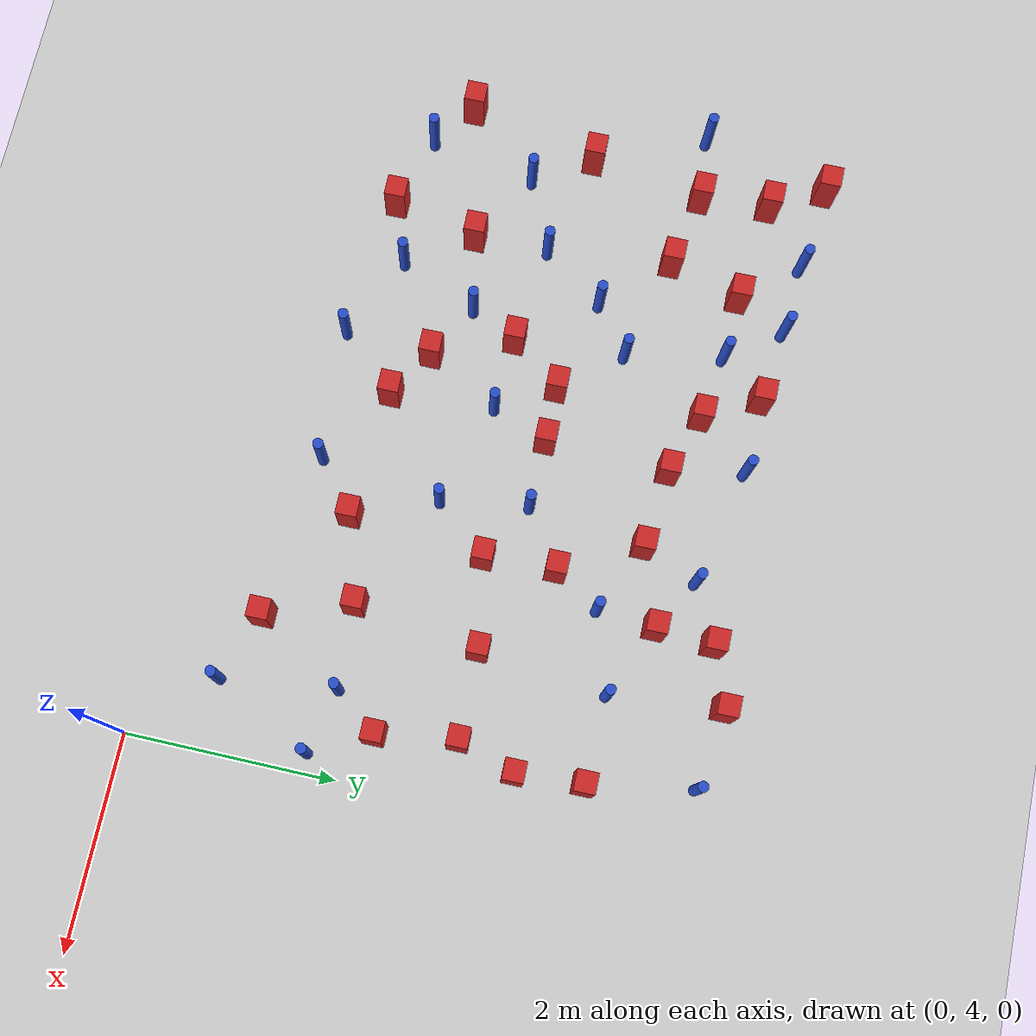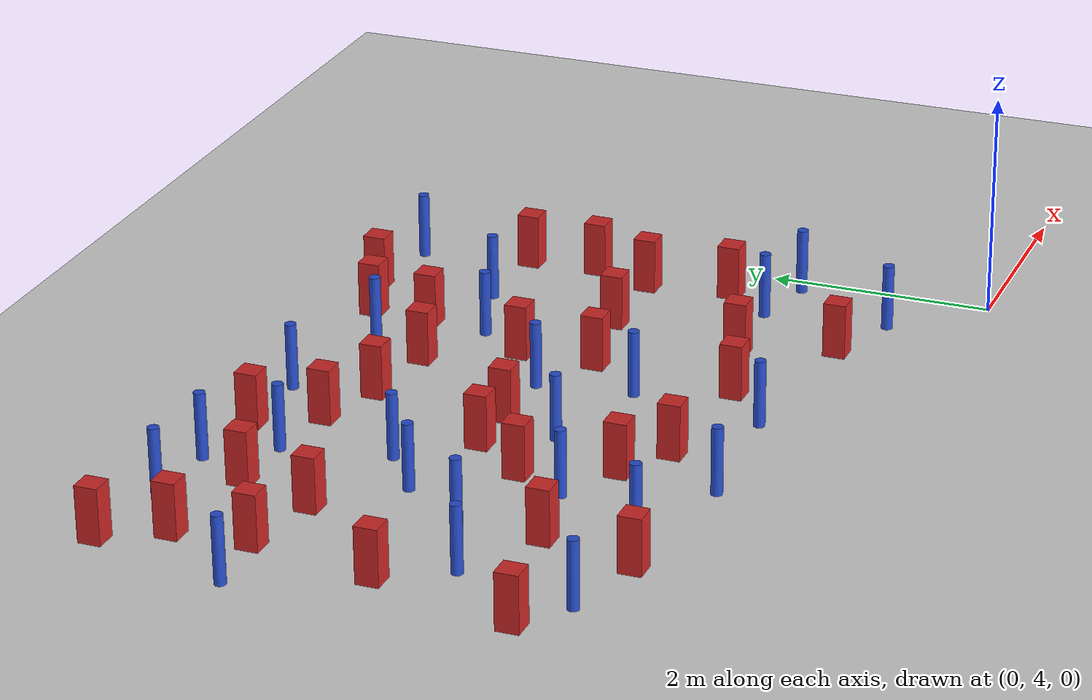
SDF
<sdf version="1.6">
 <world name="default">
  <model name="ground_plane">
   <static>1</static>
   <link name="link">
    <collision name="collision">
     <geometry><plane><normal>0 0 1</normal><size>100 100</size></plane></geometry>
     <surface><friction><ode><mu>100</mu><mu2>50</mu2></ode></friction></surface>
    </collision>
    <visual name="visual">
     <cast_shadows>0</cast_shadows>
     <geometry><plane><normal>0 0 1</normal><size>100 100</size></plane></geometry>
     <material>
      <ambient>1.0 1.0 1.0 1.0</ambient>
      <diffuse>0.8 0.8 0.8 1.0</diffuse>
      <specular>0.01 0.01 0.01 1.000000</specular>
     </material>
    </visual>
   </link>
  </model>
  <model name="square_post_obstacle5">
   <static>true</static>
   <pose>-3.48958603233 8.40357161322 8.22691968438e-08 7.22125133819e-06 -7.54495500217e-07 2.29674213826e-05</pose>
   <link name="link">
    <pose>0 0 0.25 0 -0 0</pose>
    <inertial>
     <mass>100</mass>
     <inertia>
      <ixx>0.166667</ixx>
      <ixy>0</ixy>
      <ixz>0</ixz>
      <iyy>0.166667</iyy>
      <iyz>0</iyz>
      <izz>0.166667</izz>
     </inertia>
    </inertial>
    <collision name="collision"><geometry><box><size>.2 .2 .5</size></box></geometry></collision>
    <visual name="visual">
     <geometry><box><size>.2 .2 .5</size></box></geometry>
     <material>
      <script><name>Gazebo/Red</name><uri>file://media/materials/scripts/gazebo.material</uri></script>
     </material>
    </visual>
   </link>
  </model>
  <model name="square_post_obstacle6">
   <static>true</static>
   <pose>-4.08551732455 8.60938443152 8.22691968438e-08 7.22125133819e-06 -7.54495500217e-07 2.29674213826e-05</pose>
   <link name="link">
    <pose>0 0 0.25 0 -0 0</pose>
    <inertial>
     <mass>100</mass>
     <inertia>
      <ixx>0.166667</ixx>
      <ixy>0</ixy>
      <ixz>0</ixz>
      <iyy>0.166667</iyy>
      <iyz>0</iyz>
      <izz>0.166667</izz>
     </inertia>
    </inertial>
    <collision name="collision"><geometry><box><size>.2 .2 .5</size></box></geometry></collision>
    <visual name="visual">
     <geometry><box><size>.2 .2 .5</size></box></geometry>
     <material>
      <script><name>Gazebo/Red</name><uri>file://media/materials/scripts/gazebo.material</uri></script>
     </material>
    </visual>
   </link>
  </model>
  <model name="pole_obstacle11">
   <static>true</static>
   <pose>-5.09082674828 9.23493699206 2.88873142074e-08 -9.9053668967e-09 4.60219948993e-07 -1.20965994957e-07</pose>
   <link name="link">
    <pose>0 0 0.3 0 -0 0</pose>
    <inertial>
     <mass>1</mass>
     <inertia><ixx>0.145833</ixx><ixy>0</ixy><ixz>0</ixz><iyy>0.145833</iyy><iyz>0</iyz><izz>0.125</izz></inertia>
    </inertial>
    <collision name="collision">
     <geometry><cylinder><radius>0.05</radius><length>.6</length></cylinder></geometry>
    </collision>
    <visual name="visual">
     <geometry><cylinder><radius>0.05</radius><length>.6</length></cylinder></geometry>
     <material>
      <script><name>Gazebo/Blue</name><uri>file://media/materials/scripts/gazebo.material</uri></script>
     </material>
    </visual>
   </link>
  </model>
  <model name="pole_obstacle13">
   <static>true</static>
   <pose>-4.68693473672 6.25540807904 2.88873142074e-08 -9.90536690842e-09 4.60219948965e-07 -1.20965994976e-07</pose>
   <link name="link">
    <pose>0 0 0.3 0 -0 0</pose>
    <inertial>
     <mass>1</mass>
     <inertia><ixx>0.145833</ixx><ixy>0</ixy><ixz>0</ixz><iyy>0.145833</iyy><iyz>0</iyz><izz>0.125</izz></inertia>
    </inertial>
    <collision name="collision">
     <geometry><cylinder><radius>0.05</radius><length>.6</length></cylinder></geometry>
    </collision>
    <visual name="visual">
     <geometry><cylinder><radius>0.05</radius><length>.6</length></cylinder></geometry>
     <material>
      <script><name>Gazebo/Blue</name><uri>file://media/materials/scripts/gazebo.material</uri></script>
     </material>
    </visual>
   </link>
  </model>
  <model name="square_post_obstacle14">
   <static>true</static>
   <pose>-4.07092338332 7.20835564433 8.22691968438e-08 7.2212513382e-06 -7.54495500217e-07 2.29674213826e-05</pose>
   <link name="link">
    <pose>0 0 0.25 0 -0 0</pose>
    <inertial>
     <mass>100</mass>
     <inertia>
      <ixx>0.166667</ixx>
      <ixy>0</ixy>
      <ixz>0</ixz>
      <iyy>0.166667</iyy>
      <iyz>0</iyz>
      <izz>0.166667</izz>
     </inertia>
    </inertial>
    <collision name="collision"><geometry><box><size>.2 .2 .5</size></box></geometry></collision>
    <visual name="visual">
     <geometry><box><size>.2 .2 .5</size></box></geometry>
     <material>
      <script><name>Gazebo/Red</name><uri>file://media/materials/scripts/gazebo.material</uri></script>
     </material>
    </visual>
   </link>
  </model>
  <model name="pole_obstacle28">
   <static>true</static>
   <pose>-0.670658839487 4.74331735556 2.88873142074e-08 -9.90536689661e-09 4.60219948993e-07 -1.20965994957e-07</pose>
   <link name="link">
    <pose>0 0 0.3 0 -0 0</pose>
    <inertial>
     <mass>1</mass>
     <inertia><ixx>0.145833</ixx><ixy>0</ixy><ixz>0</ixz><iyy>0.145833</iyy><iyz>0</iyz><izz>0.125</izz></inertia>
    </inertial>
    <collision name="collision">
     <geometry><cylinder><radius>0.05</radius><length>.6</length></cylinder></geometry>
    </collision>
    <visual name="visual">
     <geometry><cylinder><radius>0.05</radius><length>.6</length></cylinder></geometry>
     <material>
      <script><name>Gazebo/Blue</name><uri>file://media/materials/scripts/gazebo.material</uri></script>
     </material>
    </visual>
   </link>
  </model>
  <model name="square_post_obstacle24">
   <static>true</static>
   <pose>-6.77901674657 5.8233734673 8.22691968438e-08 7.2212513382e-06 -7.54495500217e-07 2.29674213826e-05</pose>
   <link name="link">
    <pose>0 0 0.25 0 -0 0</pose>
    <inertial>
     <mass>100</mass>
     <inertia>
      <ixx>0.166667</ixx>
      <ixy>0</ixy>
      <ixz>0</ixz>
      <iyy>0.166667</iyy>
      <iyz>0</iyz>
      <izz>0.166667</izz>
     </inertia>
    </inertial>
    <collision name="collision"><geometry><box><size>.2 .2 .5</size></box></geometry></collision>
    <visual name="visual">
     <geometry><box><size>.2 .2 .5</size></box></geometry>
     <material>
      <script><name>Gazebo/Red</name><uri>file://media/materials/scripts/gazebo.material</uri></script>
     </material>
    </visual>
   </link>
  </model>
  <model name="square_post_obstacle27">
   <static>true</static>
   <pose>-5.62643061316 5.28432594228 8.22691968438e-08 7.2212513382e-06 -7.54495500217e-07 2.29674213826e-05</pose>
   <link name="link">
    <pose>0 0 0.25 0 -0 0</pose>
    <inertial>
     <mass>100</mass>
     <inertia>
      <ixx>0.166667</ixx>
      <ixy>0</ixy>
      <ixz>0</ixz>
      <iyy>0.166667</iyy>
      <iyz>0</iyz>
      <izz>0.166667</izz>
     </inertia>
    </inertial>
    <collision name="collision"><geometry><box><size>.2 .2 .5</size></box></geometry></collision>
    <visual name="visual">
     <geometry><box><size>.2 .2 .5</size></box></geometry>
     <material>
      <script><name>Gazebo/Red</name><uri>file://media/materials/scripts/gazebo.material</uri></script>
     </material>
    </visual>
   </link>
  </model>
  <model name="square_post_obstacle30">
   <static>true</static>
   <pose>-1.44345480913 7.01463682363 8.22691968438e-08 7.2212513382e-06 -7.54495500217e-07 2.29674213826e-05</pose>
   <link name="link">
    <pose>0 0 0.25 0 -0 0</pose>
    <inertial>
     <mass>100</mass>
     <inertia>
      <ixx>0.166667</ixx>
      <ixy>0</ixy>
      <ixz>0</ixz>
      <iyy>0.166667</iyy>
      <iyz>0</iyz>
      <izz>0.166667</izz>
     </inertia>
    </inertial>
    <collision name="collision"><geometry><box><size>.2 .2 .5</size></box></geometry></collision>
    <visual name="visual">
     <geometry><box><size>.2 .2 .5</size></box></geometry>
     <material>
      <script><name>Gazebo/Red</name><uri>file://media/materials/scripts/gazebo.material</uri></script>
     </material>
    </visual>
   </link>
  </model>
  <model name="pole_obstacle39">
   <static>true</static>
   <pose>-2.8675026571 7.19557147953 2.88873142074e-08 -9.90536689859e-09 4.60219948989e-07 -1.20965994961e-07</pose>
   <link name="link">
    <pose>0 0 0.3 0 -0 0</pose>
    <inertial>
     <mass>1</mass>
     <inertia><ixx>0.145833</ixx><ixy>0</ixy><ixz>0</ixz><iyy>0.145833</iyy><iyz>0</iyz><izz>0.125</izz></inertia>
    </inertial>
    <collision name="collision">
     <geometry><cylinder><radius>0.05</radius><length>.6</length></cylinder></geometry>
    </collision>
    <visual name="visual">
     <geometry><cylinder><radius>0.05</radius><length>.6</length></cylinder></geometry>
     <material>
      <script><name>Gazebo/Blue</name><uri>file://media/materials/scripts/gazebo.material</uri></script>
     </material>
    </visual>
   </link>
  </model>
  <model name="square_post_obstacle37">
   <static>true</static>
   <pose>-1.94773936929 9.11768140269 8.22691968438e-08 7.22125133819e-06 -7.54495500217e-07 2.29674213826e-05</pose>
   <link name="link">
    <pose>0 0 0.25 0 -0 0</pose>
    <inertial>
     <mass>100</mass>
     <inertia>
      <ixx>0.166667</ixx>
      <ixy>0</ixy>
      <ixz>0</ixz>
      <iyy>0.166667</iyy>
      <iyz>0</iyz>
      <izz>0.166667</izz>
     </inertia>
    </inertial>
    <collision name="collision"><geometry><box><size>.2 .2 .5</size></box></geometry></collision>
    <visual name="visual">
     <geometry><box><size>.2 .2 .5</size></box></geometry>
     <material>
      <script><name>Gazebo/Red</name><uri>file://media/materials/scripts/gazebo.material</uri></script>
     </material>
    </visual>
   </link>
  </model>
  <model name="square_post_obstacle41">
   <static>true</static>
   <pose>-4.15422995047 5.9598400429 8.22691968438e-08 7.22125133819e-06 -7.54495500217e-07 2.29674213826e-05</pose>
   <link name="link">
    <pose>0 0 0.25 0 -0 0</pose>
    <inertial>
     <mass>100</mass>
     <inertia>
      <ixx>0.166667</ixx>
      <ixy>0</ixy>
      <ixz>0</ixz>
      <iyy>0.166667</iyy>
      <iyz>0</iyz>
      <izz>0.166667</izz>
     </inertia>
    </inertial>
    <collision name="collision"><geometry><box><size>.2 .2 .5</size></box></geometry></collision>
    <visual name="visual">
     <geometry><box><size>.2 .2 .5</size></box></geometry>
     <material>
      <script><name>Gazebo/Red</name><uri>file://media/materials/scripts/gazebo.material</uri></script>
     </material>
    </visual>
   </link>
  </model>
  <model name="pole_obstacle62">
   <static>true</static>
   <pose>-2.91675326387 5.17751795956 2.88873142074e-08 -9.90536689859e-09 4.60219948989e-07 -1.20965994961e-07</pose>
   <link name="link">
    <pose>0 0 0.3 0 -0 0</pose>
    <inertial>
     <mass>1</mass>
     <inertia><ixx>0.145833</ixx><ixy>0</ixy><ixz>0</ixz><iyy>0.145833</iyy><iyz>0</iyz><izz>0.125</izz></inertia>
    </inertial>
    <collision name="collision">
     <geometry><cylinder><radius>0.05</radius><length>.6</length></cylinder></geometry>
    </collision>
    <visual name="visual">
     <geometry><cylinder><radius>0.05</radius><length>.6</length></cylinder></geometry>
     <material>
      <script><name>Gazebo/Blue</name><uri>file://media/materials/scripts/gazebo.material</uri></script>
     </material>
    </visual>
   </link>
  </model>
  <model name="square_post_obstacle51">
   <static>true</static>
   <pose>-6.35994311782 8.86889216328 8.22691968438e-08 7.22125133819e-06 -7.54495500217e-07 2.29674213826e-05</pose>
   <link name="link">
    <pose>0 0 0.25 0 -0 0</pose>
    <inertial>
     <mass>100</mass>
     <inertia>
      <ixx>0.166667</ixx>
      <ixy>0</ixy>
      <ixz>0</ixz>
      <iyy>0.166667</iyy>
      <iyz>0</iyz>
      <izz>0.166667</izz>
     </inertia>
    </inertial>
    <collision name="collision"><geometry><box><size>.2 .2 .5</size></box></geometry></collision>
    <visual name="visual">
     <geometry><box><size>.2 .2 .5</size></box></geometry>
     <material>
      <script><name>Gazebo/Red</name><uri>file://media/materials/scripts/gazebo.material</uri></script>
     </material>
    </visual>
   </link>
  </model>
  <model name="square_post_obstacle52">
   <static>true</static>
   <pose>-1.98690926055 8.56141048474 8.22691968438e-08 7.22125133819e-06 -7.54495500217e-07 2.29674213826e-05</pose>
   <link name="link">
    <pose>0 0 0.25 0 -0 0</pose>
    <inertial>
     <mass>100</mass>
     <inertia>
      <ixx>0.166667</ixx>
      <ixy>0</ixy>
      <ixz>0</ixz>
      <iyy>0.166667</iyy>
      <iyz>0</iyz>
      <izz>0.166667</izz>
     </inertia>
    </inertial>
    <collision name="collision"><geometry><box><size>.2 .2 .5</size></box></geometry></collision>
    <visual name="visual">
     <geometry><box><size>.2 .2 .5</size></box></geometry>
     <material>
      <script><name>Gazebo/Red</name><uri>file://media/materials/scripts/gazebo.material</uri></script>
     </material>
    </visual>
   </link>
  </model>
  <model name="square_post_obstacle59">
   <static>true</static>
   <pose>-0.594910067035 7.01780344619 8.22691968438e-08 7.2212513382e-06 -7.54495500217e-07 2.29674213826e-05</pose>
   <link name="link">
    <pose>0 0 0.25 0 -0 0</pose>
    <inertial>
     <mass>100</mass>
     <inertia>
      <ixx>0.166667</ixx>
      <ixy>0</ixy>
      <ixz>0</ixz>
      <iyy>0.166667</iyy>
      <iyz>0</iyz>
      <izz>0.166667</izz>
     </inertia>
    </inertial>
    <collision name="collision"><geometry><box><size>.2 .2 .5</size></box></geometry></collision>
    <visual name="visual">
     <geometry><box><size>.2 .2 .5</size></box></geometry>
     <material>
      <script><name>Gazebo/Red</name><uri>file://media/materials/scripts/gazebo.material</uri></script>
     </material>
    </visual>
   </link>
  </model>
  <model name="square_post_obstacle62">
   <static>true</static>
   <pose>-0.480976053581 6.25958434463 8.22691968438e-08 7.22125133819e-06 -7.54495500217e-07 2.29674213826e-05</pose>
   <link name="link">
    <pose>0 0 0.25 0 -0 0</pose>
    <inertial>
     <mass>100</mass>
     <inertia>
      <ixx>0.166667</ixx>
      <ixy>0</ixy>
      <ixz>0</ixz>
      <iyy>0.166667</iyy>
      <iyz>0</iyz>
      <izz>0.166667</izz>
     </inertia>
    </inertial>
    <collision name="collision"><geometry><box><size>.2 .2 .5</size></box></geometry></collision>
    <visual name="visual">
     <geometry><box><size>.2 .2 .5</size></box></geometry>
     <material>
      <script><name>Gazebo/Red</name><uri>file://media/materials/scripts/gazebo.material</uri></script>
     </material>
    </visual>
   </link>
  </model>
  <model name="square_post_obstacle64">
   <static>true</static>
   <pose>-5.57543614679 8.04385644985 8.22691968438e-08 7.22125133819e-06 -7.54495500217e-07 2.29674213826e-05</pose>
   <link name="link">
    <pose>0 0 0.25 0 -0 0</pose>
    <inertial>
     <mass>100</mass>
     <inertia>
      <ixx>0.166667</ixx>
      <ixy>0</ixy>
      <ixz>0</ixz>
      <iyy>0.166667</iyy>
      <iyz>0</iyz>
      <izz>0.166667</izz>
     </inertia>
    </inertial>
    <collision name="collision"><geometry><box><size>.2 .2 .5</size></box></geometry></collision>
    <visual name="visual">
     <geometry><box><size>.2 .2 .5</size></box></geometry>
     <material>
      <script><name>Gazebo/Red</name><uri>file://media/materials/scripts/gazebo.material</uri></script>
     </material>
    </visual>
   </link>
  </model>
  <model name="pole_obstacle77">
   <static>true</static>
   <pose>-5.44151560831 6.83613945842 2.88873142074e-08 -9.90536690842e-09 4.60219948965e-07 -1.20965994976e-07</pose>
   <link name="link">
    <pose>0 0 0.3 0 -0 0</pose>
    <inertial>
     <mass>1</mass>
     <inertia><ixx>0.145833</ixx><ixy>0</ixy><ixz>0</ixz><iyy>0.145833</iyy><iyz>0</iyz><izz>0.125</izz></inertia>
    </inertial>
    <collision name="collision">
     <geometry><cylinder><radius>0.05</radius><length>.6</length></cylinder></geometry>
    </collision>
    <visual name="visual">
     <geometry><cylinder><radius>0.05</radius><length>.6</length></cylinder></geometry>
     <material>
      <script><name>Gazebo/Blue</name><uri>file://media/materials/scripts/gazebo.material</uri></script>
     </material>
    </visual>
   </link>
  </model>
  <model name="pole_obstacle78">
   <static>true</static>
   <pose>-2.03321036028 8.00697901637 2.88873142074e-08 -9.90536692037e-09 4.60219948937e-07 -1.20965994984e-07</pose>
   <link name="link">
    <pose>0 0 0.3 0 -0 0</pose>
    <inertial>
     <mass>1</mass>
     <inertia><ixx>0.145833</ixx><ixy>0</ixy><ixz>0</ixz><iyy>0.145833</iyy><iyz>0</iyz><izz>0.125</izz></inertia>
    </inertial>
    <collision name="collision">
     <geometry><cylinder><radius>0.05</radius><length>.6</length></cylinder></geometry>
    </collision>
    <visual name="visual">
     <geometry><cylinder><radius>0.05</radius><length>.6</length></cylinder></geometry>
     <material>
      <script><name>Gazebo/Blue</name><uri>file://media/materials/scripts/gazebo.material</uri></script>
     </material>
    </visual>
   </link>
  </model>
  <model name="pole_obstacle86">
   <static>true</static>
   <pose>-2.7413694635 6.35795802027 2.88873142074e-08 -9.90536689859e-09 4.60219948989e-07 -1.20965994961e-07</pose>
   <link name="link">
    <pose>0 0 0.3 0 -0 0</pose>
    <inertial>
     <mass>1</mass>
     <inertia><ixx>0.145833</ixx><ixy>0</ixy><ixz>0</ixz><iyy>0.145833</iyy><iyz>0</iyz><izz>0.125</izz></inertia>
    </inertial>
    <collision name="collision">
     <geometry><cylinder><radius>0.05</radius><length>.6</length></cylinder></geometry>
    </collision>
    <visual name="visual">
     <geometry><cylinder><radius>0.05</radius><length>.6</length></cylinder></geometry>
     <material>
      <script><name>Gazebo/Blue</name><uri>file://media/materials/scripts/gazebo.material</uri></script>
     </material>
    </visual>
   </link>
  </model>
  <model name="square_post_obstacle74">
   <static>true</static>
   <pose>-2.30420722318 6.87072591787 8.22691968438e-08 7.2212513382e-06 -7.54495500217e-07 2.29674213826e-05</pose>
   <link name="link">
    <pose>0 0 0.25 0 -0 0</pose>
    <inertial>
     <mass>100</mass>
     <inertia>
      <ixx>0.166667</ixx>
      <ixy>0</ixy>
      <ixz>0</ixz>
      <iyy>0.166667</iyy>
      <iyz>0</iyz>
      <izz>0.166667</izz>
     </inertia>
    </inertial>
    <collision name="collision"><geometry><box><size>.2 .2 .5</size></box></geometry></collision>
    <visual name="visual">
     <geometry><box><size>.2 .2 .5</size></box></geometry>
     <material>
      <script><name>Gazebo/Red</name><uri>file://media/materials/scripts/gazebo.material</uri></script>
     </material>
    </visual>
   </link>
  </model>
  <model name="pole_obstacle88">
   <static>true</static>
   <pose>-0.615408757548 9.20340946975 2.88873142074e-08 -9.90536690779e-09 4.60219948967e-07 -1.20965994975e-07</pose>
   <link name="link">
    <pose>0 0 0.3 0 -0 0</pose>
    <inertial>
     <mass>1</mass>
     <inertia><ixx>0.145833</ixx><ixy>0</ixy><ixz>0</ixz><iyy>0.145833</iyy><iyz>0</iyz><izz>0.125</izz></inertia>
    </inertial>
    <collision name="collision">
     <geometry><cylinder><radius>0.05</radius><length>.6</length></cylinder></geometry>
    </collision>
    <visual name="visual">
     <geometry><cylinder><radius>0.05</radius><length>.6</length></cylinder></geometry>
     <material>
      <script><name>Gazebo/Blue</name><uri>file://media/materials/scripts/gazebo.material</uri></script>
     </material>
    </visual>
   </link>
  </model>
  <model name="square_post_obstacle81">
   <static>true</static>
   <pose>-1.33251409364 5.00017900672 8.22691968438e-08 7.2212513382e-06 -7.54495500217e-07 2.29674213826e-05</pose>
   <link name="link">
    <pose>0 0 0.25 0 -0 0</pose>
    <inertial>
     <mass>100</mass>
     <inertia>
      <ixx>0.166667</ixx>
      <ixy>0</ixy>
      <ixz>0</ixz>
      <iyy>0.166667</iyy>
      <iyz>0</iyz>
      <izz>0.166667</izz>
     </inertia>
    </inertial>
    <collision name="collision"><geometry><box><size>.2 .2 .5</size></box></geometry></collision>
    <visual name="visual">
     <geometry><box><size>.2 .2 .5</size></box></geometry>
     <material>
      <script><name>Gazebo/Red</name><uri>file://media/materials/scripts/gazebo.material</uri></script>
     </material>
    </visual>
   </link>
  </model>
  <model name="square_post_obstacle84">
   <static>true</static>
   <pose>-2.72650473414 8.31195862834 8.22691968438e-08 7.22125133819e-06 -7.54495500217e-07 2.29674213826e-05</pose>
   <link name="link">
    <pose>0 0 0.25 0 -0 0</pose>
    <inertial>
     <mass>100</mass>
     <inertia>
      <ixx>0.166667</ixx>
      <ixy>0</ixy>
      <ixz>0</ixz>
      <iyy>0.166667</iyy>
      <iyz>0</iyz>
      <izz>0.166667</izz>
     </inertia>
    </inertial>
    <collision name="collision"><geometry><box><size>.2 .2 .5</size></box></geometry></collision>
    <visual name="visual">
     <geometry><box><size>.2 .2 .5</size></box></geometry>
     <material>
      <script><name>Gazebo/Red</name><uri>file://media/materials/scripts/gazebo.material</uri></script>
     </material>
    </visual>
   </link>
  </model>
  <model name="pole_obstacle98">
   <static>true</static>
   <pose>-0.802486876066 5.83782973331 2.88873142074e-08 -9.90536689661e-09 4.60219948993e-07 -1.20965994957e-07</pose>
   <link name="link">
    <pose>0 0 0.3 0 -0 0</pose>
    <inertial>
     <mass>1</mass>
     <inertia><ixx>0.145833</ixx><ixy>0</ixy><ixz>0</ixz><iyy>0.145833</iyy><iyz>0</iyz><izz>0.125</izz></inertia>
    </inertial>
    <collision name="collision">
     <geometry><cylinder><radius>0.05</radius><length>.6</length></cylinder></geometry>
    </collision>
    <visual name="visual">
     <geometry><cylinder><radius>0.05</radius><length>.6</length></cylinder></geometry>
     <material>
      <script><name>Gazebo/Blue</name><uri>file://media/materials/scripts/gazebo.material</uri></script>
     </material>
    </visual>
   </link>
  </model>
  <model name="pole_obstacle99">
   <static>true</static>
   <pose>-4.20545925739 5.10405504691 2.88873142074e-08 -9.90536690842e-09 4.60219948965e-07 -1.20965994976e-07</pose>
   <link name="link">
    <pose>0 0 0.3 0 -0 0</pose>
    <inertial>
     <mass>1</mass>
     <inertia><ixx>0.145833</ixx><ixy>0</ixy><ixz>0</ixz><iyy>0.145833</iyy><iyz>0</iyz><izz>0.125</izz></inertia>
    </inertial>
    <collision name="collision">
     <geometry><cylinder><radius>0.05</radius><length>.6</length></cylinder></geometry>
    </collision>
    <visual name="visual">
     <geometry><cylinder><radius>0.05</radius><length>.6</length></cylinder></geometry>
     <material>
      <script><name>Gazebo/Blue</name><uri>file://media/materials/scripts/gazebo.material</uri></script>
     </material>
    </visual>
   </link>
  </model>
  <model name="square_post_obstacle102">
   <static>true</static>
   <pose>-0.407405698826 7.56582412898 8.22691968438e-08 7.22125133819e-06 -7.54495500217e-07 2.29674213826e-05</pose>
   <link name="link">
    <pose>0 0 0.25 0 -0 0</pose>
    <inertial>
     <mass>100</mass>
     <inertia>
      <ixx>0.166667</ixx>
      <ixy>0</ixy>
      <ixz>0</ixz>
      <iyy>0.166667</iyy>
      <iyz>0</iyz>
      <izz>0.166667</izz>
     </inertia>
    </inertial>
    <collision name="collision"><geometry><box><size>.2 .2 .5</size></box></geometry></collision>
    <visual name="visual">
     <geometry><box><size>.2 .2 .5</size></box></geometry>
     <material>
      <script><name>Gazebo/Red</name><uri>file://media/materials/scripts/gazebo.material</uri></script>
     </material>
    </visual>
   </link>
  </model>
  <model name="pole_obstacle107">
   <static>true</static>
   <pose>-6.15099243144 6.53047039463 2.88873142074e-08 -9.90536690842e-09 4.60219948965e-07 -1.20965994976e-07</pose>
   <link name="link">
    <pose>0 0 0.3 0 -0 0</pose>
    <inertial>
     <mass>1</mass>
     <inertia><ixx>0.145833</ixx><ixy>0</ixy><ixz>0</ixz><iyy>0.145833</iyy><iyz>0</iyz><izz>0.125</izz></inertia>
    </inertial>
    <collision name="collision">
     <geometry><cylinder><radius>0.05</radius><length>.6</length></cylinder></geometry>
    </collision>
    <visual name="visual">
     <geometry><cylinder><radius>0.05</radius><length>.6</length></cylinder></geometry>
     <material>
      <script><name>Gazebo/Blue</name><uri>file://media/materials/scripts/gazebo.material</uri></script>
     </material>
    </visual>
   </link>
  </model>
  <model name="pole_obstacle109">
   <static>true</static>
   <pose>-2.48380129841 8.85496696658 2.88873142074e-08 -9.90536692318e-09 4.6021994893e-07 -1.20965994988e-07</pose>
   <link name="link">
    <pose>0 0 0.3 0 -0 0</pose>
    <inertial>
     <mass>1</mass>
     <inertia><ixx>0.145833</ixx><ixy>0</ixy><ixz>0</ixz><iyy>0.145833</iyy><iyz>0</iyz><izz>0.125</izz></inertia>
    </inertial>
    <collision name="collision">
     <geometry><cylinder><radius>0.05</radius><length>.6</length></cylinder></geometry>
    </collision>
    <visual name="visual">
     <geometry><cylinder><radius>0.05</radius><length>.6</length></cylinder></geometry>
     <material>
      <script><name>Gazebo/Blue</name><uri>file://media/materials/scripts/gazebo.material</uri></script>
     </material>
    </visual>
   </link>
  </model>
  <model name="square_post_obstacle115">
   <static>true</static>
   <pose>-6.49184933392 7.0906498854 8.22691968438e-08 7.22125133819e-06 -7.54495500217e-07 2.29674213826e-05</pose>
   <link name="link">
    <pose>0 0 0.25 0 -0 0</pose>
    <inertial>
     <mass>100</mass>
     <inertia>
      <ixx>0.166667</ixx>
      <ixy>0</ixy>
      <ixz>0</ixz>
      <iyy>0.166667</iyy>
      <iyz>0</iyz>
      <izz>0.166667</izz>
     </inertia>
    </inertial>
    <collision name="collision"><geometry><box><size>.2 .2 .5</size></box></geometry></collision>
    <visual name="visual">
     <geometry><box><size>.2 .2 .5</size></box></geometry>
     <material>
      <script><name>Gazebo/Red</name><uri>file://media/materials/scripts/gazebo.material</uri></script>
     </material>
    </visual>
   </link>
  </model>
  <model name="pole_obstacle124">
   <static>true</static>
   <pose>-4.53928699389 7.77988462084 2.88873142074e-08 -9.90536690842e-09 4.60219948965e-07 -1.20965994976e-07</pose>
   <link name="link">
    <pose>0 0 0.3 0 -0 0</pose>
    <inertial>
     <mass>1</mass>
     <inertia><ixx>0.145833</ixx><ixy>0</ixy><ixz>0</ixz><iyy>0.145833</iyy><iyz>0</iyz><izz>0.125</izz></inertia>
    </inertial>
    <collision name="collision">
     <geometry><cylinder><radius>0.05</radius><length>.6</length></cylinder></geometry>
    </collision>
    <visual name="visual">
     <geometry><cylinder><radius>0.05</radius><length>.6</length></cylinder></geometry>
     <material>
      <script><name>Gazebo/Blue</name><uri>file://media/materials/scripts/gazebo.material</uri></script>
     </material>
    </visual>
   </link>
  </model>
  <model name="pole_obstacle131">
   <static>true</static>
   <pose>-3.7499757938 6.66551716072 2.88873142074e-08 -9.90536692062e-09 4.60219948937e-07 -1.20965994985e-07</pose>
   <link name="link">
    <pose>0 0 0.3 0 -0 0</pose>
    <inertial>
     <mass>1</mass>
     <inertia><ixx>0.145833</ixx><ixy>0</ixy><ixz>0</ixz><iyy>0.145833</iyy><iyz>0</iyz><izz>0.125</izz></inertia>
    </inertial>
    <collision name="collision">
     <geometry><cylinder><radius>0.05</radius><length>.6</length></cylinder></geometry>
    </collision>
    <visual name="visual">
     <geometry><cylinder><radius>0.05</radius><length>.6</length></cylinder></geometry>
     <material>
      <script><name>Gazebo/Blue</name><uri>file://media/materials/scripts/gazebo.material</uri></script>
     </material>
    </visual>
   </link>
  </model>
  <model name="square_post_obstacle133">
   <static>true</static>
   <pose>-1.38283858162 9.31894245445 8.22691968438e-08 7.22125133819e-06 -7.54495500217e-07 2.29674213826e-05</pose>
   <link name="link">
    <pose>0 0 0.25 0 -0 0</pose>
    <inertial>
     <mass>100</mass>
     <inertia>
      <ixx>0.166667</ixx>
      <ixy>0</ixy>
      <ixz>0</ixz>
      <iyy>0.166667</iyy>
      <iyz>0</iyz>
      <izz>0.166667</izz>
     </inertia>
    </inertial>
    <collision name="collision"><geometry><box><size>.2 .2 .5</size></box></geometry></collision>
    <visual name="visual">
     <geometry><box><size>.2 .2 .5</size></box></geometry>
     <material>
      <script><name>Gazebo/Red</name><uri>file://media/materials/scripts/gazebo.material</uri></script>
     </material>
    </visual>
   </link>
  </model>
  <model name="square_post_obstacle134">
   <static>true</static>
   <pose>-2.43392460132 5.56724763189 8.22691968438e-08 7.2212513382e-06 -7.54495500217e-07 2.29674213826e-05</pose>
   <link name="link">
    <pose>0 0 0.25 0 -0 0</pose>
    <inertial>
     <mass>100</mass>
     <inertia>
      <ixx>0.166667</ixx>
      <ixy>0</ixy>
      <ixz>0</ixz>
      <iyy>0.166667</iyy>
      <iyz>0</iyz>
      <izz>0.166667</izz>
     </inertia>
    </inertial>
    <collision name="collision"><geometry><box><size>.2 .2 .5</size></box></geometry></collision>
    <visual name="visual">
     <geometry><box><size>.2 .2 .5</size></box></geometry>
     <material>
      <script><name>Gazebo/Red</name><uri>file://media/materials/scripts/gazebo.material</uri></script>
     </material>
    </visual>
   </link>
  </model>
  <model name="square_post_obstacle140">
   <static>true</static>
   <pose>-4.4633992392 6.71468448355 8.22691968438e-08 7.22125133819e-06 -7.54495500217e-07 2.29674213826e-05</pose>
   <link name="link">
    <pose>0 0 0.25 0 -0 0</pose>
    <inertial>
     <mass>100</mass>
     <inertia>
      <ixx>0.166667</ixx>
      <ixy>0</ixy>
      <ixz>0</ixz>
      <iyy>0.166667</iyy>
      <iyz>0</iyz>
      <izz>0.166667</izz>
     </inertia>
    </inertial>
    <collision name="collision"><geometry><box><size>.2 .2 .5</size></box></geometry></collision>
    <visual name="visual">
     <geometry><box><size>.2 .2 .5</size></box></geometry>
     <material>
      <script><name>Gazebo/Red</name><uri>file://media/materials/scripts/gazebo.material</uri></script>
     </material>
    </visual>
   </link>
  </model>
  <model name="square_post_obstacle142">
   <static>true</static>
   <pose>-6.64358545846 9.38733550339 8.22691968438e-08 7.22125133819e-06 -7.54495500217e-07 2.29674213826e-05</pose>
   <link name="link">
    <pose>0 0 0.25 0 -0 0</pose>
    <inertial>
     <mass>100</mass>
     <inertia>
      <ixx>0.166667</ixx>
      <ixy>0</ixy>
      <ixz>0</ixz>
      <iyy>0.166667</iyy>
      <iyz>0</iyz>
      <izz>0.166667</izz>
     </inertia>
    </inertial>
    <collision name="collision"><geometry><box><size>.2 .2 .5</size></box></geometry></collision>
    <visual name="visual">
     <geometry><box><size>.2 .2 .5</size></box></geometry>
     <material>
      <script><name>Gazebo/Red</name><uri>file://media/materials/scripts/gazebo.material</uri></script>
     </material>
    </visual>
   </link>
  </model>
  <model name="square_post_obstacle148">
   <static>true</static>
   <pose>-1.61638506615 5.81053993769 8.22691968438e-08 7.2212513382e-06 -7.54495500217e-07 2.29674213826e-05</pose>
   <link name="link">
    <pose>0 0 0.25 0 -0 0</pose>
    <inertial>
     <mass>100</mass>
     <inertia>
      <ixx>0.166667</ixx>
      <ixy>0</ixy>
      <ixz>0</ixz>
      <iyy>0.166667</iyy>
      <iyz>0</iyz>
      <izz>0.166667</izz>
     </inertia>
    </inertial>
    <collision name="collision"><geometry><box><size>.2 .2 .5</size></box></geometry></collision>
    <visual name="visual">
     <geometry><box><size>.2 .2 .5</size></box></geometry>
     <material>
      <script><name>Gazebo/Red</name><uri>file://media/materials/scripts/gazebo.material</uri></script>
     </material>
    </visual>
   </link>
  </model>
  <model name="pole_obstacle154">
   <static>true</static>
   <pose>-1.27531163139 8.24846074448 2.88873142074e-08 -9.90536690474e-09 4.60219948974e-07 -1.2096599497e-07</pose>
   <link name="link">
    <pose>0 0 0.3 0 -0 0</pose>
    <inertial>
     <mass>1</mass>
     <inertia><ixx>0.145833</ixx><ixy>0</ixy><ixz>0</ixz><iyy>0.145833</iyy><iyz>0</iyz><izz>0.125</izz></inertia>
    </inertial>
    <collision name="collision">
     <geometry><cylinder><radius>0.05</radius><length>.6</length></cylinder></geometry>
    </collision>
    <visual name="visual">
     <geometry><cylinder><radius>0.05</radius><length>.6</length></cylinder></geometry>
     <material>
      <script><name>Gazebo/Blue</name><uri>file://media/materials/scripts/gazebo.material</uri></script>
     </material>
    </visual>
   </link>
  </model>
  <model name="pole_obstacle163">
   <static>true</static>
   <pose>-5.03063553406 5.48973346884 2.88873142074e-08 -9.90536690842e-09 4.60219948965e-07 -1.20965994976e-07</pose>
   <link name="link">
    <pose>0 0 0.3 0 -0 0</pose>
    <inertial>
     <mass>1</mass>
     <inertia><ixx>0.145833</ixx><ixy>0</ixy><ixz>0</ixz><iyy>0.145833</iyy><iyz>0</iyz><izz>0.125</izz></inertia>
    </inertial>
    <collision name="collision">
     <geometry><cylinder><radius>0.05</radius><length>.6</length></cylinder></geometry>
    </collision>
    <visual name="visual">
     <geometry><cylinder><radius>0.05</radius><length>.6</length></cylinder></geometry>
     <material>
      <script><name>Gazebo/Blue</name><uri>file://media/materials/scripts/gazebo.material</uri></script>
     </material>
    </visual>
   </link>
  </model>
  <model name="square_post_obstacle162">
   <static>true</static>
   <pose>-2.33000509343 7.56220448131 8.22691968438e-08 7.2212513382e-06 -7.54495500217e-07 2.29674213826e-05</pose>
   <link name="link">
    <pose>0 0 0.25 0 -0 0</pose>
    <inertial>
     <mass>100</mass>
     <inertia>
      <ixx>0.166667</ixx>
      <ixy>0</ixy>
      <ixz>0</ixz>
      <iyy>0.166667</iyy>
      <iyz>0</iyz>
      <izz>0.166667</izz>
     </inertia>
    </inertial>
    <collision name="collision"><geometry><box><size>.2 .2 .5</size></box></geometry></collision>
    <visual name="visual">
     <geometry><box><size>.2 .2 .5</size></box></geometry>
     <material>
      <script><name>Gazebo/Red</name><uri>file://media/materials/scripts/gazebo.material</uri></script>
     </material>
    </visual>
   </link>
  </model>
  <model name="square_post_obstacle167">
   <static>true</static>
   <pose>-4.37134801554 9.13634379912 8.22691968438e-08 7.22125133819e-06 -7.54495500217e-07 2.29674213826e-05</pose>
   <link name="link">
    <pose>0 0 0.25 0 -0 0</pose>
    <inertial>
     <mass>100</mass>
     <inertia>
      <ixx>0.166667</ixx>
      <ixy>0</ixy>
      <ixz>0</ixz>
      <iyy>0.166667</iyy>
      <iyz>0</iyz>
      <izz>0.166667</izz>
     </inertia>
    </inertial>
    <collision name="collision"><geometry><box><size>.2 .2 .5</size></box></geometry></collision>
    <visual name="visual">
     <geometry><box><size>.2 .2 .5</size></box></geometry>
     <material>
      <script><name>Gazebo/Red</name><uri>file://media/materials/scripts/gazebo.material</uri></script>
     </material>
    </visual>
   </link>
  </model>
  <model name="pole_obstacle170">
   <static>true</static>
   <pose>-3.62518978532 9.11943543382 2.88873142074e-08 -9.9053668994e-09 4.60219948987e-07 -1.20965994963e-07</pose>
   <link name="link">
    <pose>0 0 0.3 0 -0 0</pose>
    <inertial>
     <mass>1</mass>
     <inertia><ixx>0.145833</ixx><ixy>0</ixy><ixz>0</ixz><iyy>0.145833</iyy><iyz>0</iyz><izz>0.125</izz></inertia>
    </inertial>
    <collision name="collision">
     <geometry><cylinder><radius>0.05</radius><length>.6</length></cylinder></geometry>
    </collision>
    <visual name="visual">
     <geometry><cylinder><radius>0.05</radius><length>.6</length></cylinder></geometry>
     <material>
      <script><name>Gazebo/Blue</name><uri>file://media/materials/scripts/gazebo.material</uri></script>
     </material>
    </visual>
   </link>
  </model>
  <model name="pole_obstacle179">
   <static>true</static>
   <pose>-5.00678958779 7.4366482864 2.88873142074e-08 -9.90536690842e-09 4.60219948965e-07 -1.20965994976e-07</pose>
   <link name="link">
    <pose>0 0 0.3 0 -0 0</pose>
    <inertial>
     <mass>1</mass>
     <inertia><ixx>0.145833</ixx><ixy>0</ixy><ixz>0</ixz><iyy>0.145833</iyy><iyz>0</iyz><izz>0.125</izz></inertia>
    </inertial>
    <collision name="collision">
     <geometry><cylinder><radius>0.05</radius><length>.6</length></cylinder></geometry>
    </collision>
    <visual name="visual">
     <geometry><cylinder><radius>0.05</radius><length>.6</length></cylinder></geometry>
     <material>
      <script><name>Gazebo/Blue</name><uri>file://media/materials/scripts/gazebo.material</uri></script>
     </material>
    </visual>
   </link>
  </model>
  <model name="square_post_obstacle176">
   <static>true</static>
   <pose>-5.34866655194 8.74545181873 8.22691968438e-08 7.22125133819e-06 -7.54495500217e-07 2.29674213826e-05</pose>
   <link name="link">
    <pose>0 0 0.25 0 -0 0</pose>
    <inertial>
     <mass>100</mass>
     <inertia>
      <ixx>0.166667</ixx>
      <ixy>0</ixy>
      <ixz>0</ixz>
      <iyy>0.166667</iyy>
      <iyz>0</iyz>
      <izz>0.166667</izz>
     </inertia>
    </inertial>
    <collision name="collision"><geometry><box><size>.2 .2 .5</size></box></geometry></collision>
    <visual name="visual">
     <geometry><box><size>.2 .2 .5</size></box></geometry>
     <material>
      <script><name>Gazebo/Red</name><uri>file://media/materials/scripts/gazebo.material</uri></script>
     </material>
    </visual>
   </link>
  </model>
  <model name="square_post_obstacle191">
   <static>true</static>
   <pose>-3.68553337669 5.66923229966 8.22691968438e-08 7.2212513382e-06 -7.54495500217e-07 2.29674213826e-05</pose>
   <link name="link">
    <pose>0 0 0.25 0 -0 0</pose>
    <inertial>
     <mass>100</mass>
     <inertia>
      <ixx>0.166667</ixx>
      <ixy>0</ixy>
      <ixz>0</ixz>
      <iyy>0.166667</iyy>
      <iyz>0</iyz>
      <izz>0.166667</izz>
     </inertia>
    </inertial>
    <collision name="collision"><geometry><box><size>.2 .2 .5</size></box></geometry></collision>
    <visual name="visual">
     <geometry><box><size>.2 .2 .5</size></box></geometry>
     <material>
      <script><name>Gazebo/Red</name><uri>file://media/materials/scripts/gazebo.material</uri></script>
     </material>
    </visual>
   </link>
  </model>
  <model name="square_post_obstacle197">
   <static>true</static>
   <pose>-3.53613978218 7.21268474439 8.22691968438e-08 7.2212513382e-06 -7.54495500217e-07 2.29674213826e-05</pose>
   <link name="link">
    <pose>0 0 0.25 0 -0 0</pose>
    <inertial>
     <mass>100</mass>
     <inertia>
      <ixx>0.166667</ixx>
      <ixy>0</ixy>
      <ixz>0</ixz>
      <iyy>0.166667</iyy>
      <iyz>0</iyz>
      <izz>0.166667</izz>
     </inertia>
    </inertial>
    <collision name="collision"><geometry><box><size>.2 .2 .5</size></box></geometry></collision>
    <visual name="visual">
     <geometry><box><size>.2 .2 .5</size></box></geometry>
     <material>
      <script><name>Gazebo/Red</name><uri>file://media/materials/scripts/gazebo.material</uri></script>
     </material>
    </visual>
   </link>
  </model>
  <model name="square_post_obstacle202">
   <static>true</static>
   <pose>-5.43291139889 6.11347016316 8.22691968438e-08 7.2212513382e-06 -7.54495500217e-07 2.29674213826e-05</pose>
   <link name="link">
    <pose>0 0 0.25 0 -0 0</pose>
    <inertial>
     <mass>100</mass>
     <inertia>
      <ixx>0.166667</ixx>
      <ixy>0</ixy>
      <ixz>0</ixz>
      <iyy>0.166667</iyy>
      <iyz>0</iyz>
      <izz>0.166667</izz>
     </inertia>
    </inertial>
    <collision name="collision"><geometry><box><size>.2 .2 .5</size></box></geometry></collision>
    <visual name="visual">
     <geometry><box><size>.2 .2 .5</size></box></geometry>
     <material>
      <script><name>Gazebo/Red</name><uri>file://media/materials/scripts/gazebo.material</uri></script>
     </material>
    </visual>
   </link>
  </model>
  <model name="square_post_obstacle206">
   <static>true</static>
   <pose>-6.30817187832 8.19692924028 8.22691968438e-08 7.22125133819e-06 -7.54495500217e-07 2.29674213826e-05</pose>
   <link name="link">
    <pose>0 0 0.25 0 -0 0</pose>
    <inertial>
     <mass>100</mass>
     <inertia>
      <ixx>0.166667</ixx>
      <ixy>0</ixy>
      <ixz>0</ixz>
      <iyy>0.166667</iyy>
      <iyz>0</iyz>
      <izz>0.166667</izz>
     </inertia>
    </inertial>
    <collision name="collision"><geometry><box><size>.2 .2 .5</size></box></geometry></collision>
    <visual name="visual">
     <geometry><box><size>.2 .2 .5</size></box></geometry>
     <material>
      <script><name>Gazebo/Red</name><uri>file://media/materials/scripts/gazebo.material</uri></script>
     </material>
    </visual>
   </link>
  </model>
  <model name="pole_obstacle194">
   <static>true</static>
   <pose>-5.79181951922 9.28731501266 2.88873142074e-08 -9.9053668967e-09 4.60219948993e-07 -1.20965994957e-07</pose>
   <link name="link">
    <pose>0 0 0.3 0 -0 0</pose>
    <inertial>
     <mass>1</mass>
     <inertia><ixx>0.145833</ixx><ixy>0</ixy><ixz>0</ixz><iyy>0.145833</iyy><iyz>0</iyz><izz>0.125</izz></inertia>
    </inertial>
    <collision name="collision">
     <geometry><cylinder><radius>0.05</radius><length>.6</length></cylinder></geometry>
    </collision>
    <visual name="visual">
     <geometry><cylinder><radius>0.05</radius><length>.6</length></cylinder></geometry>
     <material>
      <script><name>Gazebo/Blue</name><uri>file://media/materials/scripts/gazebo.material</uri></script>
     </material>
    </visual>
   </link>
  </model>
  <model name="pole_obstacle198">
   <static>true</static>
   <pose>-0.180962951339 5.69065906011 2.88873142074e-08 -9.90536689711e-09 4.60219948992e-07 -1.2096599496e-07</pose>
   <link name="link">
    <pose>0 0 0.3 0 -0 0</pose>
    <inertial>
     <mass>1</mass>
     <inertia><ixx>0.145833</ixx><ixy>0</ixy><ixz>0</ixz><iyy>0.145833</iyy><iyz>0</iyz><izz>0.125</izz></inertia>
    </inertial>
    <collision name="collision">
     <geometry><cylinder><radius>0.05</radius><length>.6</length></cylinder></geometry>
    </collision>
    <visual name="visual">
     <geometry><cylinder><radius>0.05</radius><length>.6</length></cylinder></geometry>
     <material>
      <script><name>Gazebo/Blue</name><uri>file://media/materials/scripts/gazebo.material</uri></script>
     </material>
    </visual>
   </link>
  </model>
  <model name="pole_obstacle203">
   <static>true</static>
   <pose>-6.35711948482 5.49545041798 2.88873142074e-08 -9.90536690842e-09 4.60219948965e-07 -1.20965994976e-07</pose>
   <link name="link">
    <pose>0 0 0.3 0 -0 0</pose>
    <inertial>
     <mass>1</mass>
     <inertia><ixx>0.145833</ixx><ixy>0</ixy><ixz>0</ixz><iyy>0.145833</iyy><iyz>0</iyz><izz>0.125</izz></inertia>
    </inertial>
    <collision name="collision">
     <geometry><cylinder><radius>0.05</radius><length>.6</length></cylinder></geometry>
    </collision>
    <visual name="visual">
     <geometry><cylinder><radius>0.05</radius><length>.6</length></cylinder></geometry>
     <material>
      <script><name>Gazebo/Blue</name><uri>file://media/materials/scripts/gazebo.material</uri></script>
     </material>
    </visual>
   </link>
  </model>
  <model name="pole_obstacle205">
   <static>true</static>
   <pose>-6.94248559592 8.15159290506 2.88873142074e-08 -9.9053668967e-09 4.60219948993e-07 -1.20965994957e-07</pose>
   <link name="link">
    <pose>0 0 0.3 0 -0 0</pose>
    <inertial>
     <mass>1</mass>
     <inertia><ixx>0.145833</ixx><ixy>0</ixy><ixz>0</ixz><iyy>0.145833</iyy><iyz>0</iyz><izz>0.125</izz></inertia>
    </inertial>
    <collision name="collision">
     <geometry><cylinder><radius>0.05</radius><length>.6</length></cylinder></geometry>
    </collision>
    <visual name="visual">
     <geometry><cylinder><radius>0.05</radius><length>.6</length></cylinder></geometry>
     <material>
      <script><name>Gazebo/Blue</name><uri>file://media/materials/scripts/gazebo.material</uri></script>
     </material>
    </visual>
   </link>
  </model>
  <model name="pole_obstacle209">
   <static>true</static>
   <pose>-4.72009236435 8.71482860554 2.88873142074e-08 -9.9053668967e-09 4.60219948993e-07 -1.20965994957e-07</pose>
   <link name="link">
    <pose>0 0 0.3 0 -0 0</pose>
    <inertial>
     <mass>1</mass>
     <inertia><ixx>0.145833</ixx><ixy>0</ixy><ixz>0</ixz><iyy>0.145833</iyy><iyz>0</iyz><izz>0.125</izz></inertia>
    </inertial>
    <collision name="collision">
     <geometry><cylinder><radius>0.05</radius><length>.6</length></cylinder></geometry>
    </collision>
    <visual name="visual">
     <geometry><cylinder><radius>0.05</radius><length>.6</length></cylinder></geometry>
     <material>
      <script><name>Gazebo/Blue</name><uri>file://media/materials/scripts/gazebo.material</uri></script>
     </material>
    </visual>
   </link>
  </model>
  <model name="square_post_obstacle216">
   <static>true</static>
   <pose>-0.445793247289 8.20392542764 8.22691968438e-08 7.22125133819e-06 -7.54495500217e-07 2.29674213826e-05</pose>
   <link name="link">
    <pose>0 0 0.25 0 -0 0</pose>
    <inertial>
     <mass>100</mass>
     <inertia>
      <ixx>0.166667</ixx>
      <ixy>0</ixy>
      <ixz>0</ixz>
      <iyy>0.166667</iyy>
      <iyz>0</iyz>
      <izz>0.166667</izz>
     </inertia>
    </inertial>
    <collision name="collision"><geometry><box><size>.2 .2 .5</size></box></geometry></collision>
    <visual name="visual">
     <geometry><box><size>.2 .2 .5</size></box></geometry>
     <material>
      <script><name>Gazebo/Red</name><uri>file://media/materials/scripts/gazebo.material</uri></script>
     </material>
    </visual>
   </link>
  </model>
 </world>
</sdf>
